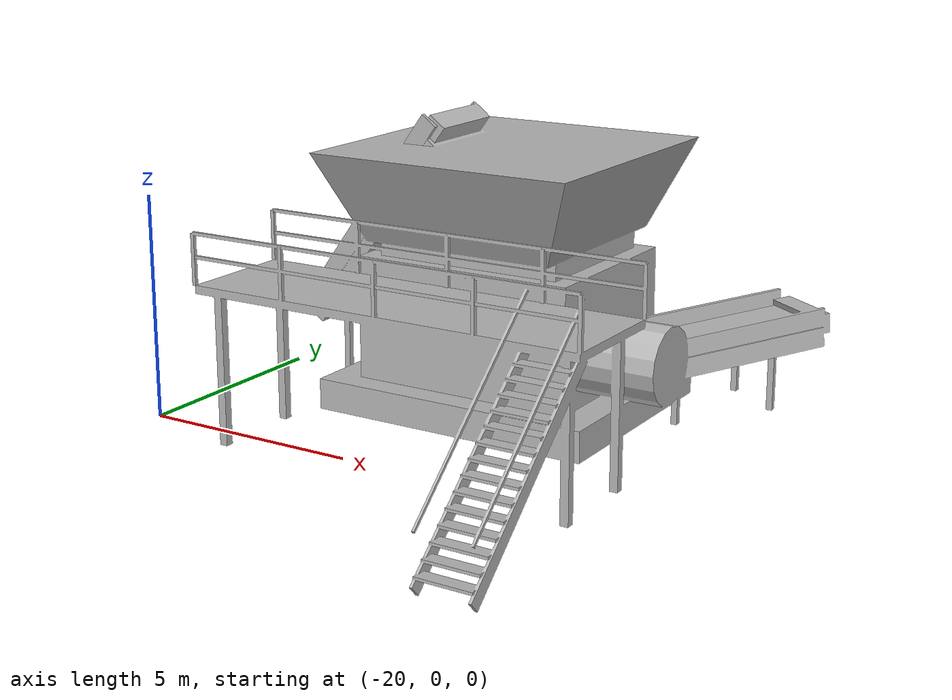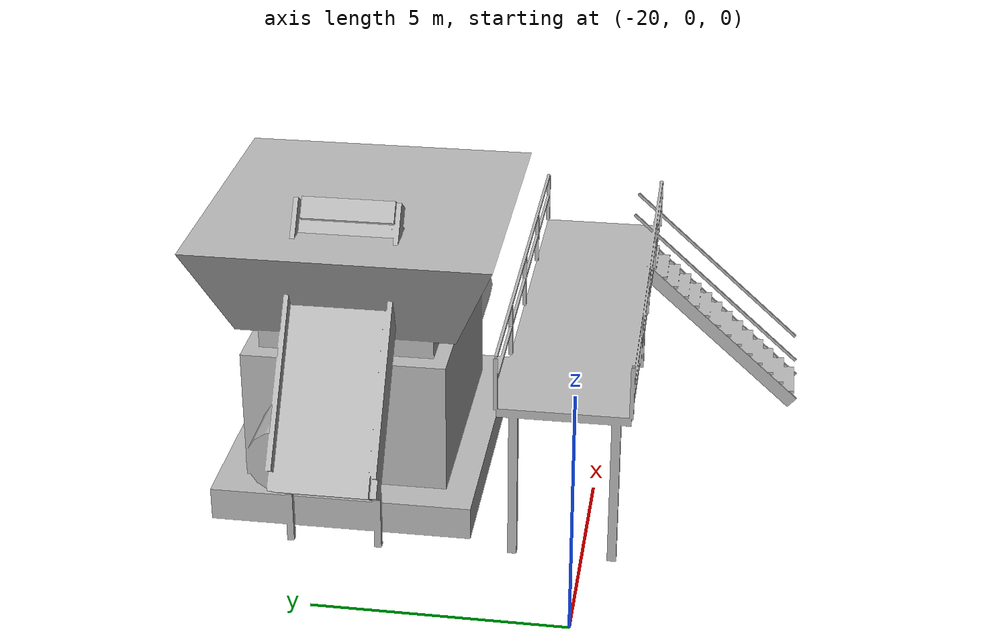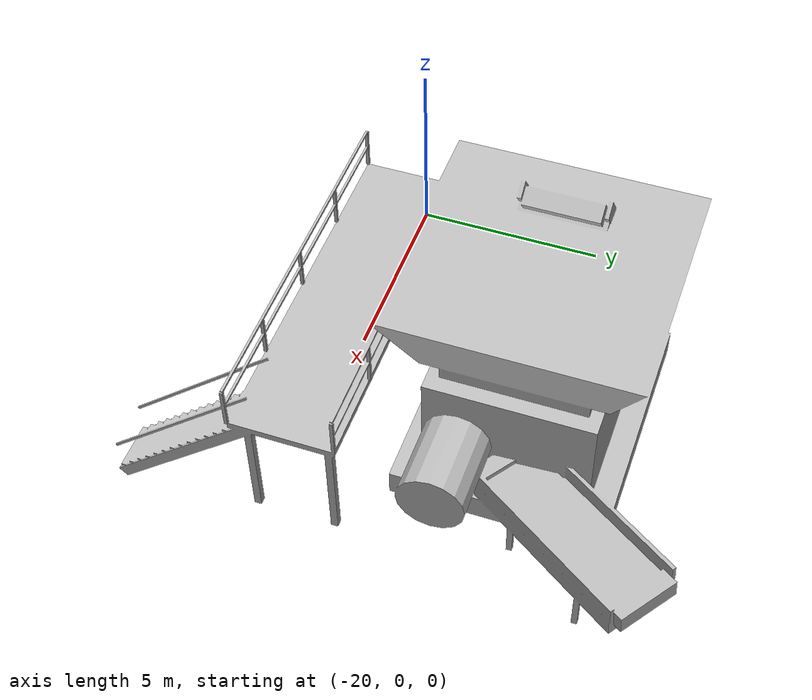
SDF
<?xml version="1.0"?>
<sdf version="1.7">
  <model name="primary_shredder">
    <static>true</static>
    <link name="link">
      <visual name="visual">
        <geometry>
          <mesh><uri>model://primary_shredder/meshes/primary_shredder.obj</uri><scale>1 1 1</scale></mesh>
        </geometry>
      </visual>
      <collision name="collision">
        <geometry>
          <mesh><uri>model://primary_shredder/meshes/primary_shredder.obj</uri><scale>1 1 1</scale></mesh>
        </geometry>
      </collision>
    </link>
  </model>
</sdf>
